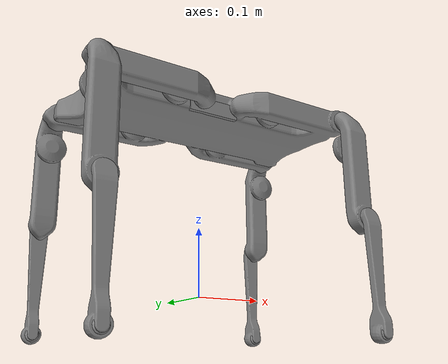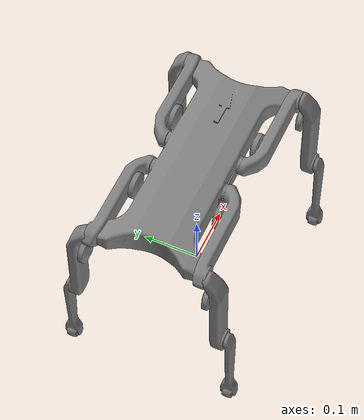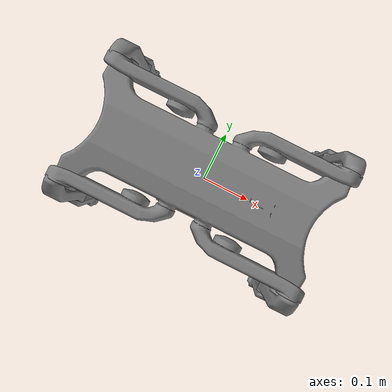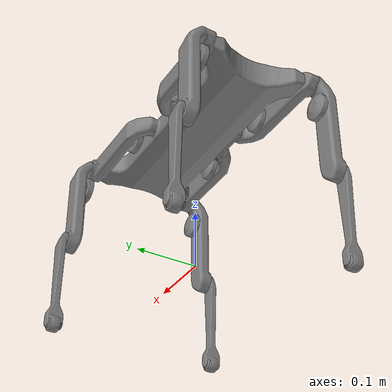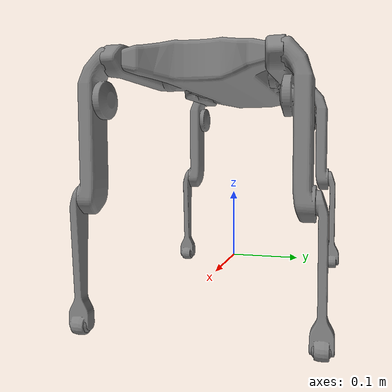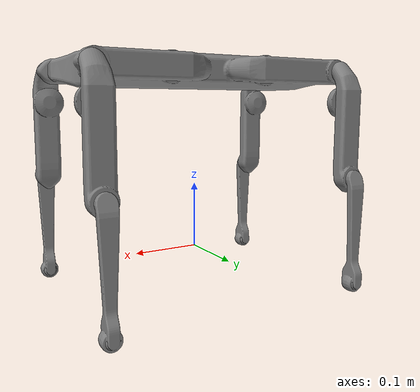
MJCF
<?xml version="1.0" ?>
<mujoco model="solo8">
  <compiler angle="radian" meshdir="meshes/stl/without_foot/" autolimits="true"/>

  <option iterations="1" ls_iterations="5" timestep="0.004" integrator="Euler">
    <flag eulerdamp="disable"/>
  </option>

  <default>
    <default class="solo8">
      <!-- Globally disable all collisions -->
      <geom condim="1" contype="0" conaffinity="0"/>
      <joint axis="0 1 0" armature="0.005" damping="0.5"/>
      <position forcerange="-60 60" inheritrange="1" kp="50" kv="8"/>
      <default class="hip">
        <joint range="-3.14 3.14" frictionloss="0.3"/>
        <position kp="50" kv="8"/>
      </default>
      <default class="knee">
        <joint range="-3.14 3.14" frictionloss="0.5"/>
        <position kp="60" kv="8" forcerange="-60 60"/>
      </default>
      <default class="visual">
        <geom type="mesh" contype="0" conaffinity="0" group="2"/>
      </default>
      <default class="collision">
        <geom group="3" type="capsule"/>
      </default>
      <default class="foot">
        <!-- Only feet can collide with ground (floor is contype=1, conaffinity=0) -->
        <geom type="sphere" size="0.013" solimp="0.9 .95 0.023" contype="0" conaffinity="1"/>
      </default>
    </default>
  </default>

  <asset>
    <texture builtin="checker" height="512" name="texplane" rgb1=".2 .3 .4" rgb2=".1 0.15 0.2" type="2d" width="512"/>
    <material name="floorplane" reflectance="0.5" texrepeat="1 1" texture="texplane" texuniform="true"/>
    <mesh name="solo_body" file="solo_body.stl"/>
    <mesh name="solo_upper_leg_left_side" file="solo_upper_leg_left_side.stl"/>
    <mesh name="solo_upper_leg_right_side" file="solo_upper_leg_right_side.stl"/>
    <mesh name="solo_lower_leg_left_side" file="solo_lower_leg_left_side.stl"/>
    <mesh name="solo_lower_leg_right_side" file="solo_lower_leg_right_side.stl"/>
  </asset>

  <worldbody>

    <body name="robot" pos="0 0 0.27" childclass="solo8">
      <freejoint name="root"/>
      <inertial pos="0 0 0" mass="1.0" diaginertia="0.01 0.01 0.01"/>
      <geom name="body_visual" type="mesh" mesh="solo_body" class="visual"/>

      <body name="imu_link" pos="-0.01018 -0.03835 -0.00785">
        <site name="imu_site" type="box" size="0.038 0.024 0.0107"/>
      </body>

      <!-- Front Left Leg -->
      <body name="FL_UPPER_LEG" pos="0.1946 0.1015 0">
        <inertial pos="0.00001530 0.01767640 -0.07838230" fullinertia="0.00041540 0.00041637 0.00002982 0 0.00000010 -0.00004589" mass="0.14737324"/>
        <joint name="FL_HFE" pos="0 0 0" axis="0 1 0" class="hip" range="-3.14 3.14"/>
        <geom name="FL_UPPER_LEG_VISUAL" type="mesh" mesh="solo_upper_leg_left_side" class="visual"/>
        <geom name="FL_UL_collision" type="capsule" size="0.01" fromto="0 0 0 0 0.03 -0.16" class="collision"/>

        <body name="FL_LOWER_LEG" pos="0 0.03745 -0.16">
          <inertial pos="0 0.00776716 -0.07003876" fullinertia="0.00008508 0.00008580 0.00000139 0 0 -0.00000200" mass="0.02318294"/>
          <joint name="FL_KFE" pos="0 0 0" axis="0 1 0" class="knee" range="-3.14 3.14"/>
          <geom name="FL_LOWER_LEG_VISUAL" type="mesh" mesh="solo_lower_leg_left_side" class="visual"/>
          <geom name="FL_LL_collision" type="capsule" size="0.01" fromto="0 0 0 0 0.01 -0.16" class="collision"/>
          <geom name="FL" class="foot" pos="0 0.0075 -0.16"/>
          <site name="FL_contact_site" pos="0 0.0075 -0.16" type="sphere" size="0.013"/>
          <site name="FL" pos="0 0.0075 -0.16" type="sphere" size="0.023" group="5"/>
        </body>
      </body>

      <!-- Front Right Leg -->
      <body name="FR_UPPER_LEG" pos="0.1946 -0.1015 0">
        <inertial pos="-0.00001530 -0.01767640 -0.07838230" fullinertia="0.00041540 0.00041637 0.00002982 0 -0.00000010 0.00004589" mass="0.14737324"/>
        <joint name="FR_HFE" pos="0 0 0" axis="0 1 0" class="hip" range="-3.14 3.14"/>
        <geom name="FR_UPPER_LEG_VISUAL" type="mesh" mesh="solo_upper_leg_right_side" class="visual"/>
        <geom name="FR_UL_collision" type="capsule" size="0.01" fromto="0 0 0 0 -0.03 -0.16" class="collision"/>

        <body name="FR_LOWER_LEG" pos="0 -0.03745 -0.16">
          <inertial pos="0 -0.00776716 -0.07003876" fullinertia="0.00008508 0.00008580 0.00000139 0 0 0.00000200" mass="0.02318294"/>
          <joint name="FR_KFE" pos="0 0 0" axis="0 1 0" class="knee" range="-3.14 3.14"/>
          <geom name="FR_LOWER_LEG_VISUAL" type="mesh" mesh="solo_lower_leg_right_side" class="visual"/>
          <geom name="FR_LL_collision" type="capsule" size="0.01" fromto="0 0 0 0 -0.01 -0.16" class="collision"/>
          <geom name="FR" class="foot" pos="0 -0.0075 -0.16"/>
          <site name="FR_contact_site" pos="0 -0.0075 -0.16" type="sphere" size="0.013"/>
          <site name="FR" pos="0 -0.0075 -0.16" type="sphere" size="0.023" group="5"/>
        </body>
      </body>

      <!-- Hind Left Leg -->
      <body name="HL_UPPER_LEG" pos="-0.1946 0.1015 0">
        <inertial pos="0.00001530 0.01767640 -0.07838230" fullinertia="0.00041540 0.00041637 0.00002982 0 0.00000010 -0.00004589" mass="0.14737324"/>
        <joint name="HL_HFE" pos="0 0 0" axis="0 1 0" class="hip" range="-3.14 3.14"/>
        <geom name="HL_UPPER_LEG_VISUAL" type="mesh" mesh="solo_upper_leg_left_side" class="visual"/>
        <geom name="HL_UL_collision" type="capsule" size="0.01" fromto="0 0 0 0 0.03 -0.16" class="collision"/>

        <body name="HL_LOWER_LEG" pos="0 0.03745 -0.16">
          <inertial pos="0 0.00776716 -0.07003876" fullinertia="0.00008508 0.00008580 0.00000139 0 0 -0.00000200" mass="0.02318294"/>
          <joint name="HL_KFE" pos="0 0 0" axis="0 1 0" class="knee" range="-3.14 3.14"/>
          <geom name="HL_LOWER_LEG_VISUAL" type="mesh" mesh="solo_lower_leg_left_side" class="visual"/>
          <geom name="HL_LL_collision" type="capsule" size="0.01" fromto="0 0 0 0 0.01 -0.16" class="collision"/>
          <geom name="HL" class="foot" pos="0 0.0075 -0.16"/>
          <site name="HL_contact_site" pos="0 0.0075 -0.16" type="sphere" size="0.013"/>
          <site name="HL" pos="0 0.0075 -0.16" type="sphere" size="0.023" group="5"/>
        </body>
      </body>

      <!-- Hind Right Leg -->
      <body name="HR_UPPER_LEG" pos="-0.1946 -0.1015 0">
        <inertial pos="-0.00001530 -0.01767640 -0.07838230" fullinertia="0.00041540 0.00041637 0.00002982 0 -0.00000010 0.00004589" mass="0.14737324"/>
        <joint name="HR_HFE" pos="0 0 0" axis="0 1 0" class="hip" range="-3.14 3.14"/>
        <geom name="HR_UPPER_LEG_VISUAL" type="mesh" mesh="solo_upper_leg_right_side" class="visual"/>
        <geom name="HR_UL_collision" type="capsule" size="0.01" fromto="0 0 0 0 -0.03 -0.16" class="collision"/>

        <body name="HR_LOWER_LEG" pos="0 -0.03745 -0.16">
          <inertial pos="0 -0.00776716 -0.07003876" fullinertia="0.00008508 0.00008580 0.00000139 0 0 0.00000200" mass="0.02318294"/>
          <joint name="HR_KFE" pos="0 0 0" axis="0 1 0" class="knee" range="-3.14 3.14"/>
          <geom name="HR_LOWER_LEG_VISUAL" type="mesh" mesh="solo_lower_leg_right_side" class="visual"/>
          <geom name="HR_LL_collision" type="capsule" size="0.01" fromto="0 0 0 0 -0.01 -0.16" class="collision"/>
          <geom name="HR" class="foot" pos="0 -0.0075 -0.16"/>
          <site name="HR_contact_site" pos="0 -0.0075 -0.16" type="sphere" size="0.013"/>
          <site name="HR" pos="0 -0.0075 -0.16" type="sphere" size="0.023" group="5"/>
        </body>
      </body>
    </body>
  </worldbody>

  <contact>
    <pair name="front_left_foot_ground_contact" condim="6" geom1="floor" geom2="FL" friction="1 1 0.005 0.0001 0.0001"/>
    <pair name="front_right_foot_ground_contact" condim="6" geom1="floor" geom2="FR" friction="1 1 0.005 0.0001 0.0001"/>
    <pair name="back_left_foot_ground_contact" condim="6" geom1="floor" geom2="HL" friction="1 1 0.005 0.0001 0.0001"/>
    <pair name="back_right_foot_ground_contact" condim="6" geom1="floor" geom2="HR" friction="1 1 0.005 0.0001 0.0001"/>
  </contact>

  <actuator>
    <position name="FL_HFE" joint="FL_HFE" kp="50" kv="8" ctrlrange="-1.5 1.5" forcerange="-60 60"/>
    <position name="FL_KFE" joint="FL_KFE" kp="60" kv="8" ctrlrange="-1.5 1.5" forcerange="-60 60"/>
    <position name="FR_HFE" joint="FR_HFE" kp="50" kv="8" ctrlrange="-1.5 1.5" forcerange="-60 60"/>
    <position name="FR_KFE" joint="FR_KFE" kp="60" kv="8" ctrlrange="-1.5 1.5" forcerange="-60 60"/>
    <position name="HL_HFE" joint="HL_HFE" kp="50" kv="8" ctrlrange="-1.5 1.5" forcerange="-60 60"/>
    <position name="HL_KFE" joint="HL_KFE" kp="60" kv="8" ctrlrange="-1.5 1.5" forcerange="-60 60"/>
    <position name="HR_HFE" joint="HR_HFE" kp="50" kv="8" ctrlrange="-1.5 1.5" forcerange="-60 60"/>
    <position name="HR_KFE" joint="HR_KFE" kp="60" kv="8" ctrlrange="-1.5 1.5" forcerange="-60 60"/>
  </actuator>

  <sensor>
    <!-- IMU sensors -->
    <accelerometer name="accelerometer" site="imu_site" noise="0.01"/>
    <gyro name="gyroscope" site="imu_site" noise="0.01"/>
    <framequat name="orientation_sensor" objtype="site" objname="imu_site" noise="0.02"/>

    <!-- IMU-based derived quantities -->
    <framepos objtype="site" objname="imu_site" name="position"/>
    <framezaxis objtype="site" objname="imu_site" name="upvector"/>
    <framexaxis objtype="site" objname="imu_site" name="forwardvector"/>
    <framelinvel objtype="site" objname="imu_site" name="global_linvel"/>
    <frameangvel objtype="site" objname="imu_site" name="global_angvel"/>
    <velocimeter site="imu_site" name="local_linvel"/>

    <!-- Foot sensors -->
    <touch name="FL_contact_sensor" site="FL_contact_site"/>
    <touch name="FR_contact_sensor" site="FR_contact_site"/>
    <touch name="HL_contact_sensor" site="HL_contact_site"/>
    <touch name="HR_contact_sensor" site="HR_contact_site"/>

    <!-- Foot positions relative to IMU -->
    <framepos objtype="site" objname="FL" name="FL_pos" reftype="site" refname="imu_site"/>
    <framepos objtype="site" objname="FR" name="FR_pos" reftype="site" refname="imu_site"/>
    <framepos objtype="site" objname="HL" name="HL_pos" reftype="site" refname="imu_site"/>
    <framepos objtype="site" objname="HR" name="HR_pos" reftype="site" refname="imu_site"/>

    <!-- Foot velocities in global frame -->
    <framelinvel objtype="site" objname="FL" name="FL_global_linvel"/>
    <framelinvel objtype="site" objname="FR" name="FR_global_linvel"/>
    <framelinvel objtype="site" objname="HL" name="HL_global_linvel"/>
    <framelinvel objtype="site" objname="HR" name="HR_global_linvel"/>
  </sensor>
</mujoco>
